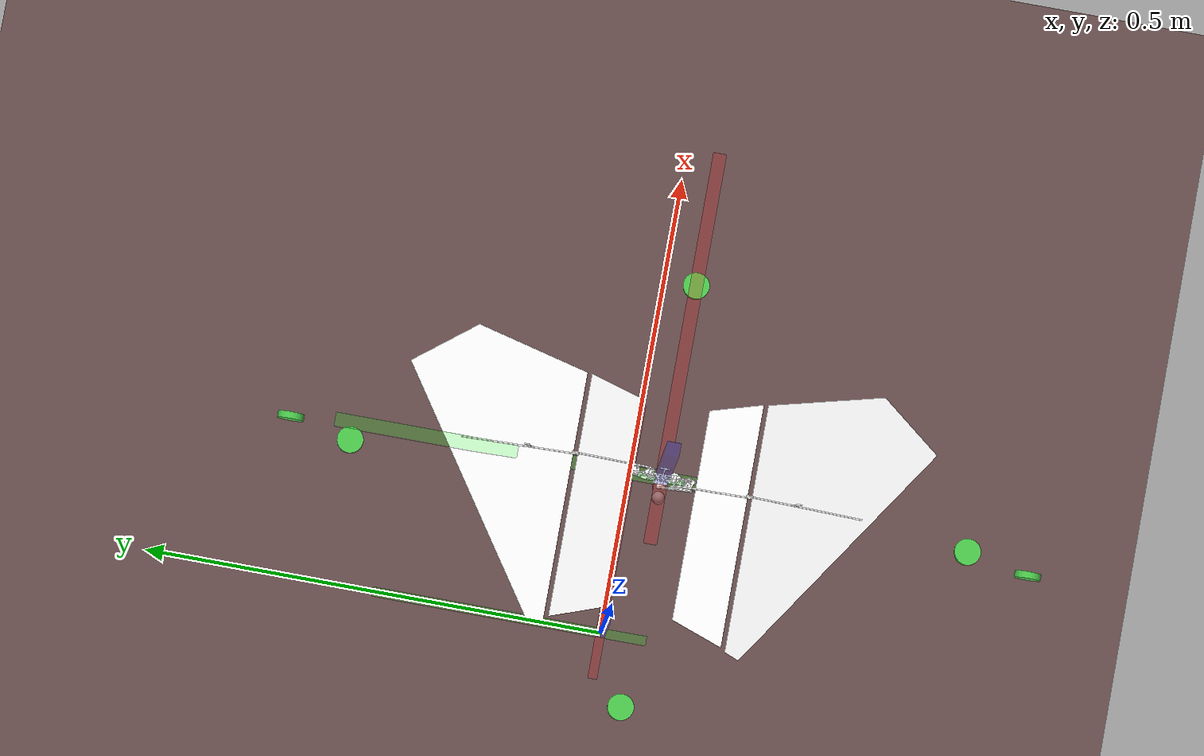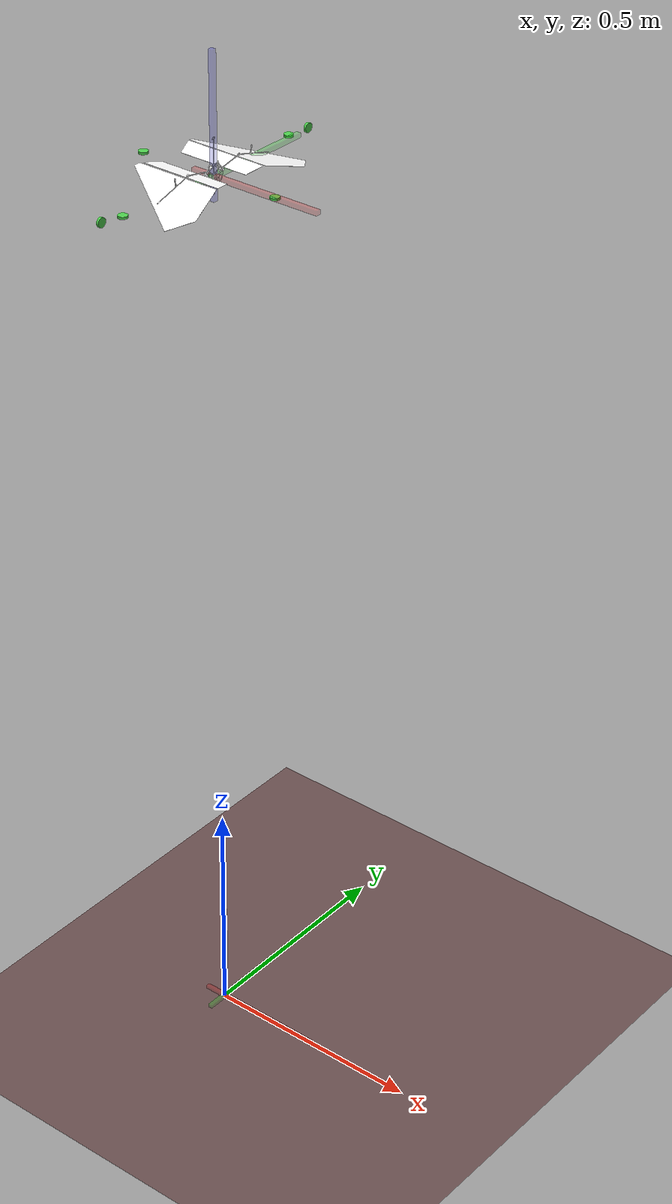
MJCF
<mujoco model="Flappy_v8_JointInput">
  <compiler angle="radian" meshdir="meshes_v8/" balanceinertia="true" />
  <option impratio="1" gravity="0 0 -9.81" timestep="1e-3" integrator="implicit" density="1.225" viscosity="1.789e-5"> Uncomment this to enable aerodynamics
  </option>
  <visual>
    <global offwidth="3000" offheight="3000"/>
  </visual>
  <asset>
    <texture builtin="gradient" type="skybox" height="100" width="100" rgb1="1 1 1" rgb2=".6 .8 1"/>
    <texture name="texgeom" builtin="flat" height="1278" mark="cross" markrgb="1 1 1" random="0.01" rgb1="0.8 0.6 0.4" rgb2="0.8 0.6 0.4" type="cube" width="127"/>
    <texture name="texplane" builtin="checker" height="100" width="100" rgb1="0 0 0" rgb2="0.8 0.8 0.8" type="2d"/>
    <material name="MatPlane" reflectance="0.5" shininess="1" specular="1" texrepeat="60 60" texture="texplane"/>
    <mesh name="Base" file="Base.STL"/>
    <mesh name="L1" file="L1.STL"/>
    <mesh name="L2" file="L2.STL"/>
    <mesh name="L1R" file="L1R.STL"/>
    <mesh name="L2R" file="L2R.STL"/>
    <mesh name="L3" file="L3.STL"/>
    <mesh name="L7" file="L7.STL"/>
    <mesh name="L6" file="L6.STL"/>
    <mesh name="L5" file="L5.STL"/>
    <mesh name="L4" file="L4.STL"/>
    <mesh name="L3R" file="L3R.STL"/>
    <mesh name="L7R" file="L7R.STL"/>
    <mesh name="L6R" file="L6R.STL"/>
    <mesh name="L5R" file="L5R.STL"/>
    <mesh name="L4R" file="L4R.STL"/>
    <mesh name="Proximal_L" file="Proximal_L.STL"/>
    <mesh name="Proximal_R" file="Proximal_R.STL"/>
    <mesh name="Distal_L" file="Distal_L.STL"/>
    <mesh name="Distal_R" file="Distal_R.STL"/>
  </asset>

  <default>
    <geom contype="0" conaffinity="0" condim="1" solref="0.001 1"/>
    <equality solref="1e-10 1"/>
    <default class="visual">
      <geom group="2" type="mesh" contype="0" conaffinity="0" rgba="1 1 1 1" density="0" />
    </default>
    <default class="collision">
      <geom contype="1" group="3" density="0" />
    </default>
    <default class="aerodynamics">
      <geom group="2" type="mesh" contype="0" conaffinity="0" rgba="1 1 1 1" density="0" fluidshape="ellipsoid"/>
    </default>
  </default>

  <worldbody>
    <light cutoff="100" diffuse="1 1 1" dir="-0 0 -1.3" directional="true" exponent="1" pos="0 0 2.0" specular=".1 .1 .1"/>
    <geom contype="1" conaffinity="1" condim="3" material="MatPlane" name="floor" pos="0 0 0" rgba="0.4 0.3 0.3 1" size="5 5 0.2" type="plane"/>
    <body name='Base' pos='0 0 2.0' quat="1 0 0 0">
      <freejoint/>
      <site name="motor1" type="cylinder" pos="0.148 .0 .0" size=".01 0.0025" quat="1 0 0 0" rgba=".3 .8 .3 1"/> Front
      <site name="motor2" type="cylinder" pos="-0.175 .0 .0" size=".01 0.0025" quat="1 0 0 0" rgba=".3 .8 .3 1"/> Back
      <site name="motor3" type="cylinder" pos="-0.0135 -0.236 .0" size=".01 .0025" quat="1 0 0 0" rgba=".3 .8 .3 1"/> Right
      <site name="motor4" type="cylinder" pos="-0.0135 0.236 .0" size=".01 .0025" quat="1 0 0 0" rgba=".3 .8 .3 1"/> Left

      <site name="motor5" type="cylinder" pos="-0.02309409 -0.28340624 0.00202624" size=".01 .0025" quat="0.7071068 0 0.7071068 0" rgba=".3 .8 .3 1"/> Left
      <site name="motor6" type="cylinder" pos="-0.00397818 0.28319645 0.00210978" size=".01 .0025" quat="0.7071068 0 0.7071068 0" rgba=".3 .8 .3 1"/> Right

      <geom class="collision" mesh="Base"/>
      <geom class="visual" mesh="Base"/>
      <inertial pos="-0.015 0 0" quat="1 0 0 0" mass="0.0813" diaginertia="1.905e-03	6.872e-04 2.261e-03"/> With guard (prop)

      <body name="L3" pos="0.0052 0.020673 0.0075244" quat="0.372893 0.60079 0.372898 0.60079">
        <inertial pos="0.0243413 -0.00482289 -0.0243401" quat="0.795566 -0.0119647 -0.00383338 0.605736" mass="0.00170505" diaginertia="4.01765e-06 3.70297e-06 3.24993e-07"/>
        <joint name="J5" type='hinge' pos="0 0 0" axis="0 0 1" damping="0.01"/>
        <geom class="collision" mesh="L3"/>
        <geom class="visual" mesh="L3"/>
        <geom class="aerodynamics" mesh="Proximal_L"/>
        <body name="L7" pos="0.074121 -0.030565 -0.001" quat="0.932157 0 0 -0.362054">
          <inertial pos="0.0175244 -0.0044015 0.000591145" quat="0.694089 0.156825 0.157693 0.684675" mass="0.00371107" diaginertia="1.26925e-05 9.98807e-06 2.75403e-06"/>
          <joint name="J6" type='hinge' pos="-0.035 0 0.001" axis="0 0 1" damping="0.02"/>
          <geom class="collision" mesh="L7"/>
          <geom class="visual" mesh="L7"/>
          <geom class="aerodynamics" mesh="Distal_L"/>
        </body>
      </body>

      <body name="L3R" pos="-0.0042 -0.020673 0.0075244" quat="0.600789 0.372896 -0.600792 -0.372896">
        <inertial pos="0.0243414 -0.0048229 0.0170716" quat="0.79594 0.00867428 0.00295725 0.605306" mass="0.00170505" diaginertia="3.88055e-06 3.56509e-06 3.26048e-07"/>
        <joint name="J5R" pos="0 0 0" axis="0 0 1" damping="0.01"/>
        <geom class="collision" mesh="L3R"/>
        <geom class="visual" mesh="L3R"/>
        <geom class="aerodynamics" mesh="Proximal_R"/>
        <body name="L7R" pos="0.074121 -0.030565 -0.001" quat="0.932157 0 0 -0.362054">
          <inertial pos="0.0175244 -0.0044015 -0.00700329" quat="0.692947 -0.158508 -0.157599 0.685465" mass="0.00371107" diaginertia="1.27171e-05 1.00415e-05 2.72544e-06"/>
          <joint name="J6R" pos="-0.035 0 0.001" axis="0 0 1" damping="0.02"/>
          <geom class="collision" mesh="L7R"/>
          <geom class="visual" mesh="L7R"/>
          <geom class="aerodynamics" mesh="Distal_R"/>
        </body>
      </body>

      <site name="body_frame" pos="-0.015 0 0" quat="1 0 0 0"/>
      <site name="x_axis_b" type="box" pos=".1 .0 .0" size=".15 .005 .005" quat="1 0 0 0" rgba="1 0 0 0.2"/>
      <site name="y_axis_b" type="box" pos=".0 .1 .0" size=".15 .005 .005" quat=".707 0 0 .707" rgba="0 1 0 0.2"/>
      <site name="z_axis_b" type="box" pos=".0 .0 .1" size=".15 .005 .005" quat="-.707 0 .707 0" rgba="0 0 1 0.2"/>
    </body>
    <site name="x_axis" type="box" pos=".1 .0 .0" size=".15 .005 .005" quat="1 0 0 0" rgba="1 0 0 0.2"/>
    <site name="y_axis" type="box" pos=".0 .1 .0" size=".15 .005 .005" quat=".707 0 0 .707" rgba="0 1 0 0.2"/>
    <site name="z_axis" type="box" pos=".0 .0 .1" size=".15 .005 .005" quat="-.707 0 .707 0" rgba="0 0 1 0.2"/>
  </worldbody>

  <sensor>
    <framepos name="Body_pos" objtype="site" objname="body_frame"/>       <!-- datasensor[0:3] -->
    <framequat name="Body_quat" objtype="site" objname="body_frame"/>     <!-- datasensor[3:7] -->
    <framelinvel name="Body_linvel" objtype="site" objname="body_frame"/> <!-- datasensor[7:10] -->
    <gyro name="Body_angvel_local" site="body_frame"/>                    <!-- datasensor[10:13] -->
  </sensor>

  <equality>
    <joint name = 'J5-eq' joint1='J5'  joint2='J5R' polycoef="0 1 0 0 0"/>
    <joint name = 'J6-eq' joint1='J6'  joint2='J6R' polycoef="0 1 0 0 0"/>
  </equality>

  <actuator>
    <position name="J5_angle" joint="J5" ctrllimited="true" ctrlrange="-2. 1.57" kp="50"/>
    <position name="J6_angle" joint="J6" ctrllimited="true" ctrlrange="-1.57 1.57" kp="50"/>
    <motor name="Motor1" ctrllimited="true" ctrlrange="0 1" gear="0  0. 0.35 0. 0. -0.0056" site="motor1"/> unit: N
    <motor name="Motor2" ctrllimited="true" ctrlrange="0 1" gear="0  0. 0.35 0. 0. -0.0056" site="motor2"/>
    <motor name="Motor3" ctrllimited="true" ctrlrange="0 1" gear="0  0. 0.35 0. 0. -0.0056" site="motor3"/>
    <motor name="Motor4" ctrllimited="true" ctrlrange="0 1" gear="0  0. 0.35 0. 0. -0.0056" site="motor4"/>
    <motor name="Motor5" ctrllimited="true" ctrlrange="0 1" gear="0  0. .1 0. 0.  0.0016" site="motor5"/>
    <motor name="Motor6" ctrllimited="true" ctrlrange="0 1" gear="0  0. -.1 0. 0. -0.0016" site="motor6"/>
  </actuator>

</mujoco>
